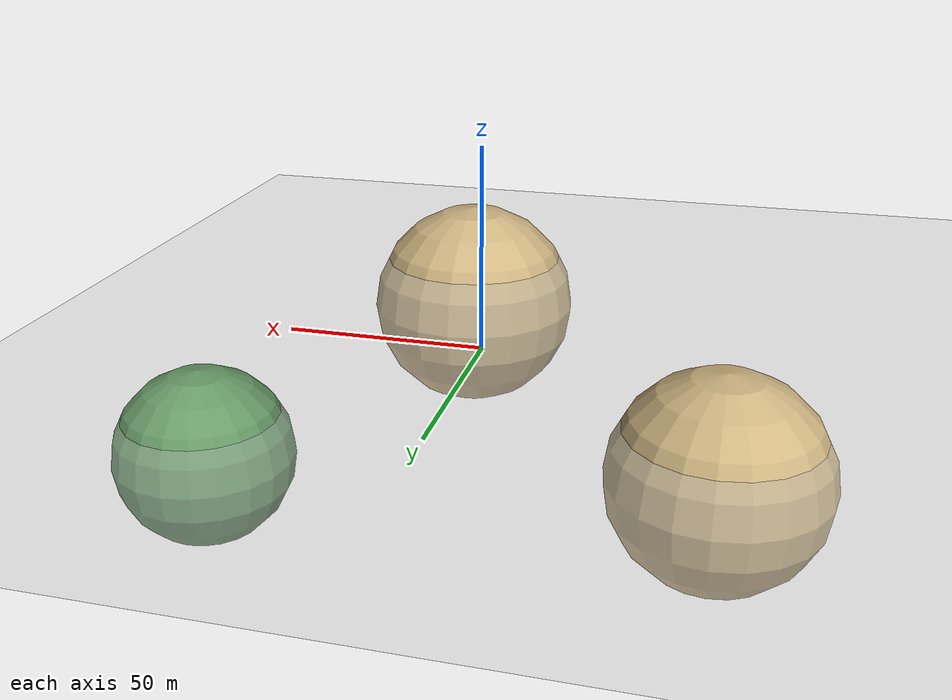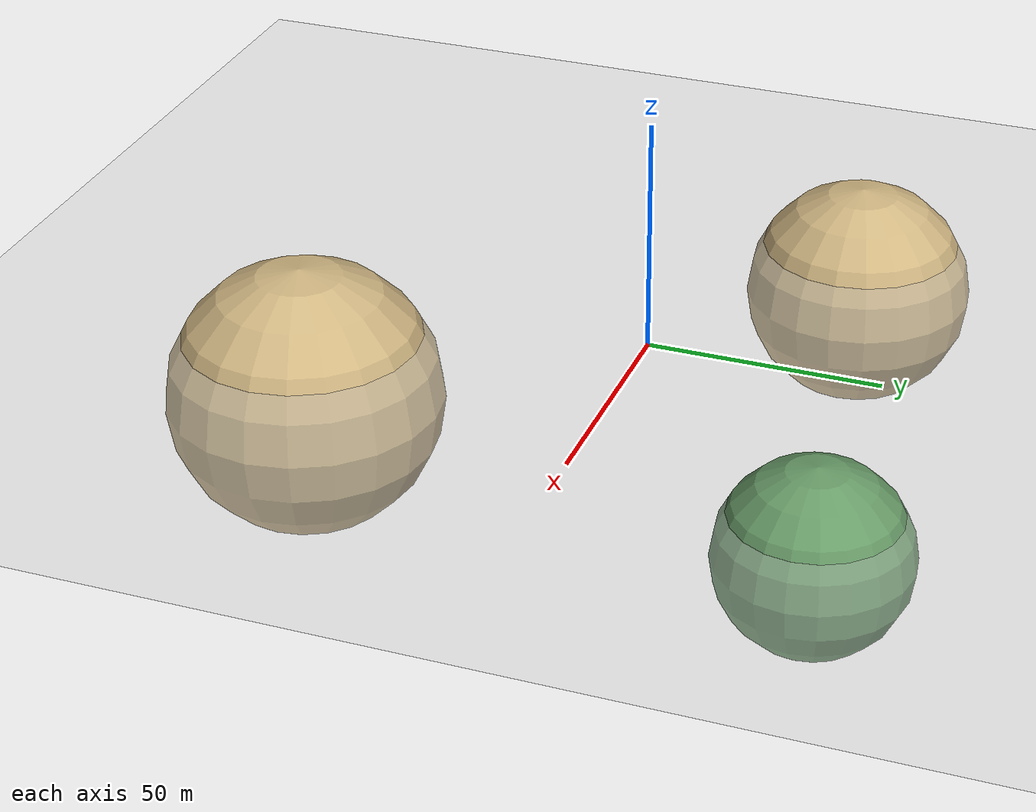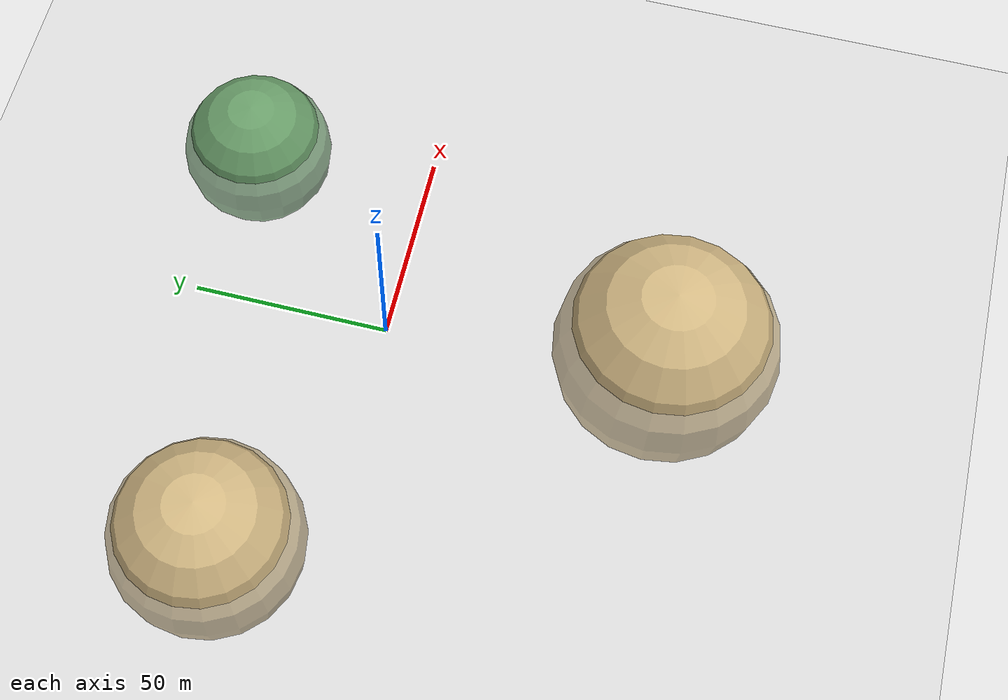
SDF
<?xml version="1.0" ?>
<sdf version="1.8">
  <world name="simple_hills">

    <spherical_coordinates>
      <surface_model>EARTH_WGS84</surface_model>
      <world_frame_orientation>ENU</world_frame_orientation>
      <latitude_deg>47.2380</latitude_deg>
      <longitude_deg>6.0240</longitude_deg>
      <elevation>250</elevation>
      <heading_deg>0</heading_deg>
    </spherical_coordinates>

    <physics name="1ms" type="ode">
      <max_step_size>0.001</max_step_size>
      <real_time_factor>1.0</real_time_factor>
    </physics>

    <plugin filename="ignition-gazebo-physics-system" name="ignition::gazebo::systems::Physics"></plugin>
    <plugin filename="ignition-gazebo-user-commands-system" name="ignition::gazebo::systems::UserCommands"></plugin>
    <plugin filename="ignition-gazebo-scene-broadcaster-system" name="ignition::gazebo::systems::SceneBroadcaster"></plugin>
    <plugin filename="ignition-gazebo-sensors-system" name="ignition::gazebo::systems::Sensors">
      <render_engine>ogre2</render_engine>
    </plugin>

    <plugin filename="ignition-gazebo-imu-system" name="ignition::gazebo::systems::Imu"></plugin>
    <plugin filename="ignition-gazebo-navsat-system" name="ignition::gazebo::systems::NavSat"></plugin>
    <plugin filename="ignition-gazebo-magnetometer-system" name="ignition::gazebo::systems::Magnetometer"></plugin>
    <plugin filename="ignition-gazebo-air-pressure-system" name="ignition::gazebo::systems::AirPressure"></plugin>
    <plugin filename="ignition-gazebo-altimeter-system" name="ignition::gazebo::systems::Altimeter"></plugin>

    <!-- Flat ground -->
    <model name="ground_plane">
      <static>true</static>
      <link name="link">
        <collision name="collision">
          <geometry>
            <plane>
              <normal>0 0 1</normal>
              <size>1000 1000</size>
            </plane>
          </geometry>
        </collision>
        <visual name="visual">
          <geometry>
            <plane>
              <normal>0 0 1</normal>
              <size>1000 1000</size>
            </plane>
          </geometry>
          <material>
                <ambient>0.8 0.8 0.8 1</ambient>
            <diffuse>0.8 0.8 0.8 1</diffuse>
          </material>
        </visual>
      </link>
    </model>

    <!-- Add hills as spheres -->
    <model name="hill_1">
      <static>true</static>
      <pose>50 50 -10 0 0 0</pose>
      <link name="link">
        <collision name="collision">
          <geometry>
            <sphere><radius>20</radius></sphere>
          </geometry>
        </collision>
        <visual name="visual">
          <geometry>
            <sphere><radius>20</radius></sphere>
          </geometry>
          <material>
            <ambient>0.4 0.6 0.4 1</ambient>
            <diffuse>0.4 0.6 0.4 1</diffuse>
          </material>
        </visual>
      </link>
    </model>

    <model name="hill_2">
      <static>true</static>
      <pose>-60 30 -12 0 0 0</pose>
      <link name="link">
        <collision name="collision">
          <geometry>
            <sphere><radius>25</radius></sphere>
          </geometry>
        </collision>
        <visual name="visual">
          <geometry>
            <sphere><radius>25</radius></sphere>
          </geometry>
          <material>
	     <ambient>0.8 0.7 0.5 1</ambient>
             <diffuse>0.8 0.7 0.5 1</diffuse>
          </material>
        </visual>
      </link>
    </model>

    <model name="hill_3">
      <static>true</static>
      <pose>20 -70 -15 0 0 0</pose>
      <link name="link">
        <collision name="collision">
          <geometry>
            <sphere><radius>30</radius></sphere>
          </geometry>
        </collision>
        <visual name="visual">
          <geometry>
            <sphere><radius>30</radius></sphere>
          </geometry>
          <material>
             <ambient>0.8 0.7 0.5 1</ambient>
             <diffuse>0.8 0.7 0.5 1</diffuse>
          </material>
        </visual>
      </link>
    </model>

    <!-- Sun -->
    <light type="directional" name="sun">
      <cast_shadows>true</cast_shadows>
      <pose>0 0 10 0 0 0</pose>
      <diffuse>0.8 0.8 0.8 1</diffuse>
      <specular>0.2 0.2 0.2 1</specular>
      <direction>-0.5 0.1 -0.9</direction>
    </light>
  </world>
</sdf>
